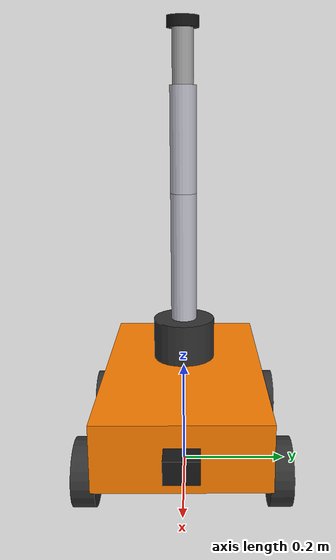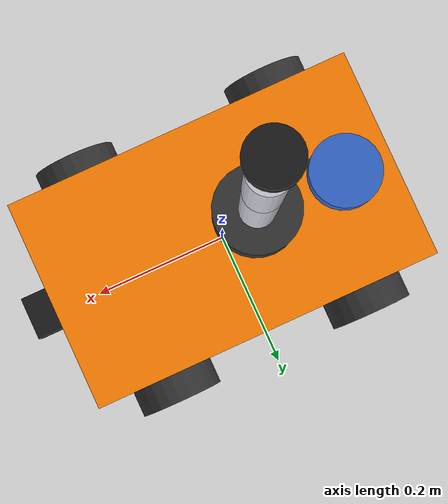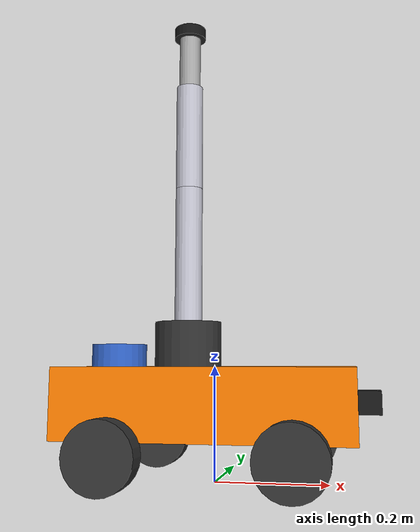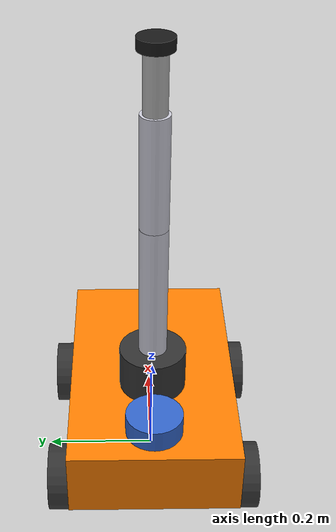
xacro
<?xml version="1.0"?>
<robot xmlns:xacro="http://www.ros.org/wiki/xacro" name="gcar">

  <!-- Xacro arguments -->
  <xacro:arg name="controller_config_file" default=""/>

  <!-- ==================== PROPERTIES ==================== -->
  <!-- Chassis -->
  <xacro:property name="chassis_length" value="0.5"/>
  <xacro:property name="chassis_width" value="0.3"/>
  <xacro:property name="chassis_height" value="0.12"/>
  <xacro:property name="chassis_mass" value="8.0"/>

  <!-- Wheels - All 4 wheels are cylinders -->
  <xacro:property name="wheel_radius" value="0.06"/>
  <xacro:property name="wheel_width" value="0.04"/>
  <xacro:property name="wheel_mass" value="0.5"/>
  <xacro:property name="wheel_separation" value="0.34"/>

  <!-- Wheel positions (relative to chassis center) -->
  <xacro:property name="rear_wheel_x" value="-0.15"/>
  <xacro:property name="front_wheel_x" value="0.15"/>

  <!-- Ground clearance -->
  <xacro:property name="ground_clearance" value="0.02"/>

  <!-- Arm segment properties -->
  <xacro:property name="arm_base_height" value="0.08"/>
  <xacro:property name="arm_base_radius" value="0.06"/>
  <xacro:property name="upper_arm_length" value="0.25"/>
  <xacro:property name="forearm_length" value="0.20"/>
  <xacro:property name="wrist_length" value="0.10"/>
  <xacro:property name="link_radius" value="0.025"/>
  <xacro:property name="arm_mass" value="0.5"/>

  <!-- Sensor properties -->
  <xacro:property name="lidar_radius" value="0.05"/>
  <xacro:property name="lidar_height" value="0.04"/>
  <xacro:property name="camera_size" value="0.04"/>

  <!-- ==================== MATERIALS ==================== -->
  <material name="orange">
    <color rgba="1.0 0.5 0.0 1.0"/>
  </material>
  <material name="dark_gray">
    <color rgba="0.2 0.2 0.2 1.0"/>
  </material>
  <material name="light_gray">
    <color rgba="0.7 0.7 0.7 1.0"/>
  </material>
  <material name="blue">
    <color rgba="0.2 0.4 0.8 1.0"/>
  </material>
  <material name="black">
    <color rgba="0.1 0.1 0.1 1.0"/>
  </material>
  <material name="silver">
    <color rgba="0.8 0.8 0.85 1.0"/>
  </material>

  <!-- ==================== INERTIA MACROS ==================== -->
  <xacro:macro name="box_inertia" params="m x y z">
    <inertia ixx="${(m/12)*(y*y+z*z)}" ixy="0" ixz="0"
             iyy="${(m/12)*(x*x+z*z)}" iyz="0"
             izz="${(m/12)*(x*x+y*y)}"/>
  </xacro:macro>

  <xacro:macro name="cylinder_inertia" params="m r h">
    <inertia ixx="${(m/12)*(3*r*r+h*h)}" ixy="0" ixz="0"
             iyy="${(m/12)*(3*r*r+h*h)}" iyz="0"
             izz="${(m/2)*r*r}"/>
  </xacro:macro>

  <xacro:macro name="sphere_inertia" params="m r">
    <inertia ixx="${(2/5)*m*r*r}" ixy="0" ixz="0"
             iyy="${(2/5)*m*r*r}" iyz="0"
             izz="${(2/5)*m*r*r}"/>
  </xacro:macro>

  <!-- ==================== WHEEL MACRO ==================== -->
  <xacro:macro name="wheel" params="prefix x_pos y_reflect">
    <link name="${prefix}_wheel_link">
      <!-- Main wheel cylinder -->
      <visual name="wheel_visual">
        <origin xyz="0 0 0" rpy="${pi/2} 0 0"/>
        <geometry>
          <cylinder radius="${wheel_radius}" length="${wheel_width}"/>
        </geometry>
        <material name="dark_gray"/>
      </visual>
      <!-- White stripe to show rotation -->
      <visual name="stripe_visual">
        <origin xyz="${wheel_radius * 0.5} 0 0" rpy="${pi/2} 0 0"/>
        <geometry>
          <box size="${wheel_radius * 0.8} ${wheel_width + 0.002} 0.015"/>
        </geometry>
        <material name="white">
          <color rgba="1.0 1.0 1.0 1.0"/>
        </material>
      </visual>
      <collision>
        <origin xyz="0 0 0" rpy="${pi/2} 0 0"/>
        <geometry>
          <cylinder radius="${wheel_radius}" length="${wheel_width}"/>
        </geometry>
      </collision>
      <inertial>
        <origin xyz="0 0 0" rpy="${pi/2} 0 0"/>
        <mass value="${wheel_mass}"/>
        <xacro:cylinder_inertia m="${wheel_mass}" r="${wheel_radius}" h="${wheel_width}"/>
      </inertial>
    </link>

    <joint name="${prefix}_wheel_joint" type="continuous">
      <parent link="base_link"/>
      <child link="${prefix}_wheel_link"/>
      <origin xyz="${x_pos} ${y_reflect * wheel_separation / 2} ${-chassis_height/2 - ground_clearance}" rpy="0 0 0"/>
      <axis xyz="0 1 0"/>
      <dynamics damping="0.01" friction="0.1"/>
    </joint>

    <gazebo reference="${prefix}_wheel_link">
      <material>Gazebo/DarkGrey</material>
      <mu1>1.5</mu1>
      <mu2>1.5</mu2>
      <kp>1000000.0</kp>
      <kd>100.0</kd>
      <minDepth>0.001</minDepth>
    </gazebo>
  </xacro:macro>

  <!-- ==================== BASE FOOTPRINT ==================== -->
  <link name="base_footprint"/>

  <!-- ==================== BASE LINK (CHASSIS) ==================== -->
  <link name="base_link">
    <visual>
      <geometry>
        <box size="${chassis_length} ${chassis_width} ${chassis_height}"/>
      </geometry>
      <material name="orange"/>
    </visual>
    <collision>
      <geometry>
        <box size="${chassis_length} ${chassis_width} ${chassis_height}"/>
      </geometry>
    </collision>
    <inertial>
      <mass value="${chassis_mass}"/>
      <xacro:box_inertia m="${chassis_mass}" x="${chassis_length}" y="${chassis_width}" z="${chassis_height}"/>
    </inertial>
  </link>

  <!-- Base footprint joint - chassis center is above ground by wheel_radius + ground_clearance + half chassis height -->
  <joint name="base_footprint_joint" type="fixed">
    <parent link="base_footprint"/>
    <child link="base_link"/>
    <origin xyz="0 0 ${wheel_radius + ground_clearance + chassis_height/2}" rpy="0 0 0"/>
  </joint>

  <gazebo reference="base_link">
    <material>Gazebo/Orange</material>
  </gazebo>

  <!-- ==================== 4 WHEELS ==================== -->
  <!-- Rear wheels (DRIVE wheels - connected to diff_drive) -->
  <xacro:wheel prefix="rear_left" x_pos="${rear_wheel_x}" y_reflect="1"/>
  <xacro:wheel prefix="rear_right" x_pos="${rear_wheel_x}" y_reflect="-1"/>

  <!-- Front wheels (PASSIVE - free spinning) -->
  <xacro:wheel prefix="front_left" x_pos="${front_wheel_x}" y_reflect="1"/>
  <xacro:wheel prefix="front_right" x_pos="${front_wheel_x}" y_reflect="-1"/>

  <!-- ==================== 3-DOF ARM ==================== -->

  <!-- Arm Base (turret) - Rotates around Z axis -->
  <link name="arm_base_link">
    <visual>
      <geometry>
        <cylinder radius="${arm_base_radius}" length="${arm_base_height}"/>
      </geometry>
      <material name="dark_gray"/>
    </visual>
    <collision>
      <geometry>
        <cylinder radius="${arm_base_radius}" length="${arm_base_height}"/>
      </geometry>
    </collision>
    <inertial>
      <mass value="${arm_mass}"/>
      <xacro:cylinder_inertia m="${arm_mass}" r="${arm_base_radius}" h="${arm_base_height}"/>
    </inertial>
  </link>

  <joint name="arm_base_joint" type="revolute">
    <parent link="base_link"/>
    <child link="arm_base_link"/>
    <!-- Arm mounted toward the rear of chassis to avoid collision when moving -->
    <origin xyz="-0.05 0 ${chassis_height/2 + arm_base_height/2}" rpy="0 0 0"/>
    <axis xyz="0 0 1"/>
    <limit lower="-3.14159" upper="3.14159" effort="50" velocity="1.0"/>
    <dynamics damping="0.5" friction="0.1"/>
  </joint>

  <!-- Shoulder Link - Rotates around Y axis (pitch) -->
  <link name="shoulder_link">
    <visual>
      <origin xyz="0 0 ${upper_arm_length/2}" rpy="0 0 0"/>
      <geometry>
        <cylinder radius="${link_radius}" length="${upper_arm_length}"/>
      </geometry>
      <material name="silver"/>
    </visual>
    <collision>
      <origin xyz="0 0 ${upper_arm_length/2}" rpy="0 0 0"/>
      <geometry>
        <cylinder radius="${link_radius}" length="${upper_arm_length}"/>
      </geometry>
    </collision>
    <inertial>
      <origin xyz="0 0 ${upper_arm_length/2}" rpy="0 0 0"/>
      <mass value="${arm_mass}"/>
      <xacro:cylinder_inertia m="${arm_mass}" r="${link_radius}" h="${upper_arm_length}"/>
    </inertial>
  </link>

  <joint name="shoulder_joint" type="revolute">
    <parent link="arm_base_link"/>
    <child link="shoulder_link"/>
    <origin xyz="0 0 ${arm_base_height/2}" rpy="0 0 0"/>
    <axis xyz="0 1 0"/>
    <limit lower="-1.57" upper="1.57" effort="50" velocity="1.0"/>
    <dynamics damping="0.5" friction="0.1"/>
  </joint>

  <!-- Elbow Link - Rotates around Y axis (pitch) -->
  <link name="elbow_link">
    <visual>
      <origin xyz="0 0 ${forearm_length/2}" rpy="0 0 0"/>
      <geometry>
        <cylinder radius="${link_radius}" length="${forearm_length}"/>
      </geometry>
      <material name="silver"/>
    </visual>
    <collision>
      <origin xyz="0 0 ${forearm_length/2}" rpy="0 0 0"/>
      <geometry>
        <cylinder radius="${link_radius}" length="${forearm_length}"/>
      </geometry>
    </collision>
    <inertial>
      <origin xyz="0 0 ${forearm_length/2}" rpy="0 0 0"/>
      <mass value="${arm_mass}"/>
      <xacro:cylinder_inertia m="${arm_mass}" r="${link_radius}" h="${forearm_length}"/>
    </inertial>
  </link>

  <joint name="elbow_joint" type="revolute">
    <parent link="shoulder_link"/>
    <child link="elbow_link"/>
    <origin xyz="0 0 ${upper_arm_length}" rpy="0 0 0"/>
    <axis xyz="0 1 0"/>
    <limit lower="-2.35" upper="2.35" effort="50" velocity="1.0"/>
    <dynamics damping="0.5" friction="0.1"/>
  </joint>

  <!-- Wrist Link -->
  <link name="wrist_link">
    <visual>
      <origin xyz="0 0 ${wrist_length/2}" rpy="0 0 0"/>
      <geometry>
        <cylinder radius="${link_radius * 0.8}" length="${wrist_length}"/>
      </geometry>
      <material name="light_gray"/>
    </visual>
    <collision>
      <origin xyz="0 0 ${wrist_length/2}" rpy="0 0 0"/>
      <geometry>
        <cylinder radius="${link_radius * 0.8}" length="${wrist_length}"/>
      </geometry>
    </collision>
    <inertial>
      <origin xyz="0 0 ${wrist_length/2}" rpy="0 0 0"/>
      <mass value="${arm_mass * 0.5}"/>
      <xacro:cylinder_inertia m="${arm_mass * 0.5}" r="${link_radius * 0.8}" h="${wrist_length}"/>
    </inertial>
  </link>

  <joint name="wrist_joint" type="fixed">
    <parent link="elbow_link"/>
    <child link="wrist_link"/>
    <origin xyz="0 0 ${forearm_length}" rpy="0 0 0"/>
  </joint>

  <!-- ==================== VACUUM GRIPPER ==================== -->
  <link name="gripper_link">
    <visual>
      <geometry>
        <cylinder radius="0.03" length="0.02"/>
      </geometry>
      <material name="black"/>
    </visual>
    <collision>
      <geometry>
        <cylinder radius="0.03" length="0.02"/>
      </geometry>
    </collision>
    <inertial>
      <mass value="0.1"/>
      <xacro:cylinder_inertia m="0.1" r="0.03" h="0.02"/>
    </inertial>
  </link>

  <joint name="gripper_joint" type="fixed">
    <parent link="wrist_link"/>
    <child link="gripper_link"/>
    <origin xyz="0 0 ${wrist_length + 0.01}" rpy="0 0 0"/>
  </joint>

  <!-- Tool Center Point (TCP) for manipulation -->
  <link name="tool_frame"/>
  <joint name="tool_frame_joint" type="fixed">
    <parent link="gripper_link"/>
    <child link="tool_frame"/>
    <origin xyz="0 0 0.02" rpy="0 0 0"/>
  </joint>

  <!-- ==================== LIDAR SENSOR ==================== -->
  <link name="lidar_link">
    <visual>
      <geometry>
        <cylinder radius="${lidar_radius}" length="${lidar_height}"/>
      </geometry>
      <material name="blue"/>
    </visual>
    <collision>
      <geometry>
        <cylinder radius="${lidar_radius}" length="${lidar_height}"/>
      </geometry>
    </collision>
    <inertial>
      <mass value="0.2"/>
      <xacro:cylinder_inertia m="0.2" r="${lidar_radius}" h="${lidar_height}"/>
    </inertial>
  </link>

  <joint name="lidar_joint" type="fixed">
    <parent link="base_link"/>
    <child link="lidar_link"/>
    <origin xyz="-0.18 0 ${chassis_height/2 + lidar_height/2}" rpy="0 0 0"/>
  </joint>

  <!-- ==================== CAMERA SENSOR ==================== -->
  <link name="camera_link">
    <visual>
      <geometry>
        <box size="${camera_size} ${camera_size*1.5} ${camera_size}"/>
      </geometry>
      <material name="black"/>
    </visual>
    <collision>
      <geometry>
        <box size="${camera_size} ${camera_size*1.5} ${camera_size}"/>
      </geometry>
    </collision>
    <inertial>
      <mass value="0.1"/>
      <xacro:box_inertia m="0.1" x="${camera_size}" y="${camera_size*1.5}" z="${camera_size}"/>
    </inertial>
  </link>

  <joint name="camera_joint" type="fixed">
    <parent link="base_link"/>
    <child link="camera_link"/>
    <origin xyz="${chassis_length/2 + camera_size/2} 0 0" rpy="0 0 0"/>
  </joint>

  <!-- Camera optical frame (Z forward, X right, Y down) -->
  <link name="camera_optical_frame"/>
  <joint name="camera_optical_joint" type="fixed">
    <parent link="camera_link"/>
    <child link="camera_optical_frame"/>
    <origin xyz="0 0 0" rpy="${-pi/2} 0 ${-pi/2}"/>
  </joint>

  <!-- ==================== GAZEBO PLUGINS ==================== -->
  <gazebo>
    <!-- Differential Drive Plugin - uses REAR wheels -->
    <plugin name="diff_drive" filename="libgazebo_ros_diff_drive.so">
      <ros>
        <namespace>/gcar</namespace>
        <remapping>cmd_vel:=cmd_vel</remapping>
        <remapping>odom:=odom</remapping>
      </ros>

      <!-- REAR wheel joints for differential drive -->
      <left_joint>rear_left_wheel_joint</left_joint>
      <right_joint>rear_right_wheel_joint</right_joint>

      <!-- Kinematics -->
      <wheel_separation>${wheel_separation}</wheel_separation>
      <wheel_diameter>${wheel_radius * 2}</wheel_diameter>

      <!-- Limits -->
      <max_wheel_torque>20</max_wheel_torque>
      <max_wheel_acceleration>1.0</max_wheel_acceleration>

      <!-- Odometry output -->
      <publish_odom>true</publish_odom>
      <publish_odom_tf>true</publish_odom_tf>
      <publish_wheel_tf>true</publish_wheel_tf>

      <odometry_frame>odom</odometry_frame>
      <robot_base_frame>base_footprint</robot_base_frame>

      <!-- Update rate -->
      <update_rate>50</update_rate>
    </plugin>

    <!-- Joint State Publisher for ALL joints -->
    <plugin name="joint_state_publisher" filename="libgazebo_ros_joint_state_publisher.so">
      <ros>
        <namespace>/gcar</namespace>
        <remapping>joint_states:=joint_states</remapping>
      </ros>
      <update_rate>50</update_rate>
      <!-- All 4 wheel joints -->
      <joint_name>rear_left_wheel_joint</joint_name>
      <joint_name>rear_right_wheel_joint</joint_name>
      <joint_name>front_left_wheel_joint</joint_name>
      <joint_name>front_right_wheel_joint</joint_name>
      <!-- Arm joints -->
      <joint_name>arm_base_joint</joint_name>
      <joint_name>shoulder_joint</joint_name>
      <joint_name>elbow_joint</joint_name>
    </plugin>
  </gazebo>

  <!-- Gazebo material colors for arm -->
  <gazebo reference="arm_base_link">
    <material>Gazebo/DarkGrey</material>
  </gazebo>

  <gazebo reference="shoulder_link">
    <material>Gazebo/Grey</material>
  </gazebo>

  <gazebo reference="elbow_link">
    <material>Gazebo/Grey</material>
  </gazebo>

  <gazebo reference="wrist_link">
    <material>Gazebo/White</material>
  </gazebo>

  <gazebo reference="gripper_link">
    <material>Gazebo/Black</material>
  </gazebo>

  <gazebo reference="lidar_link">
    <material>Gazebo/Blue</material>
    <!-- LiDAR Sensor Plugin -->
    <sensor name="lidar" type="ray">
      <always_on>true</always_on>
      <update_rate>10</update_rate>
      <visualize>false</visualize>
      <ray>
        <scan>
          <horizontal>
            <samples>360</samples>
            <resolution>1</resolution>
            <min_angle>-3.14159</min_angle>
            <max_angle>3.14159</max_angle>
          </horizontal>
        </scan>
        <range>
          <min>0.12</min>
          <max>10.0</max>
          <resolution>0.01</resolution>
        </range>
        <noise>
          <type>gaussian</type>
          <mean>0.0</mean>
          <stddev>0.01</stddev>
        </noise>
      </ray>
      <plugin name="lidar_plugin" filename="libgazebo_ros_ray_sensor.so">
        <ros>
          <namespace>/gcar</namespace>
          <remapping>~/out:=scan</remapping>
        </ros>
        <output_type>sensor_msgs/LaserScan</output_type>
        <frame_name>lidar_link</frame_name>
      </plugin>
    </sensor>
  </gazebo>

  <gazebo reference="camera_link">
    <material>Gazebo/Black</material>
    <!-- RGB Camera Sensor Plugin -->
    <sensor name="camera" type="camera">
      <always_on>true</always_on>
      <update_rate>30</update_rate>
      <visualize>false</visualize>
      <camera>
        <horizontal_fov>1.3962634</horizontal_fov>
        <image>
          <width>640</width>
          <height>480</height>
          <format>R8G8B8</format>
        </image>
        <clip>
          <near>0.02</near>
          <far>100</far>
        </clip>
        <noise>
          <type>gaussian</type>
          <mean>0.0</mean>
          <stddev>0.007</stddev>
        </noise>
      </camera>
      <plugin name="camera_plugin" filename="libgazebo_ros_camera.so">
        <ros>
          <namespace>/gcar</namespace>
          <remapping>image_raw:=camera/image_raw</remapping>
          <remapping>camera_info:=camera/camera_info</remapping>
        </ros>
        <camera_name>camera</camera_name>
        <frame_name>camera_optical_frame</frame_name>
      </plugin>
    </sensor>

    <!-- Depth Camera for waste detection -->
    <sensor name="depth_camera" type="depth">
      <always_on>true</always_on>
      <update_rate>15</update_rate>
      <camera>
        <horizontal_fov>1.047198</horizontal_fov>
        <image>
          <width>640</width>
          <height>480</height>
          <format>R8G8B8</format>
        </image>
        <clip>
          <near>0.1</near>
          <far>10</far>
        </clip>
      </camera>
      <plugin name="depth_camera_plugin" filename="libgazebo_ros_camera.so">
        <ros>
          <namespace>/gcar</namespace>
          <remapping>image_raw:=depth/image_raw</remapping>
          <remapping>camera_info:=depth/camera_info</remapping>
          <remapping>points:=depth/points</remapping>
        </ros>
        <camera_name>depth</camera_name>
        <frame_name>camera_optical_frame</frame_name>
        <min_depth>0.1</min_depth>
        <max_depth>10.0</max_depth>
      </plugin>
    </sensor>
  </gazebo>

  <!-- ==================== ROS2 CONTROL ==================== -->
  <ros2_control name="GazeboSystem" type="system">
    <hardware>
      <plugin>gazebo_ros2_control/GazeboSystem</plugin>
    </hardware>

    <!-- Arm Base Joint (rotation around Z) -->
    <joint name="arm_base_joint">
      <command_interface name="position">
        <param name="min">-3.14</param>
        <param name="max">3.14</param>
      </command_interface>
      <state_interface name="position"/>
      <state_interface name="velocity"/>
    </joint>

    <!-- Shoulder Joint (pitch around Y) -->
    <joint name="shoulder_joint">
      <command_interface name="position">
        <param name="min">-1.57</param>
        <param name="max">1.57</param>
      </command_interface>
      <state_interface name="position"/>
      <state_interface name="velocity"/>
    </joint>

    <!-- Elbow Joint (pitch around Y) -->
    <joint name="elbow_joint">
      <command_interface name="position">
        <param name="min">-2.35</param>
        <param name="max">2.35</param>
      </command_interface>
      <state_interface name="position"/>
      <state_interface name="velocity"/>
    </joint>
  </ros2_control>

  <!-- Load ros2_control plugin for Gazebo -->
  <gazebo>
    <plugin filename="libgazebo_ros2_control.so" name="gazebo_ros2_control">
      <ros>
        <namespace>/gcar</namespace>
      </ros>
      <parameters>$(arg controller_config_file)</parameters>
      <controller_manager_name>controller_manager</controller_manager_name>
    </plugin>
  </gazebo>

</robot>
